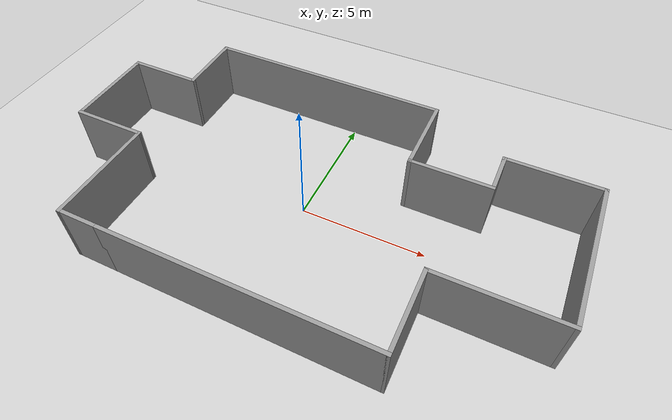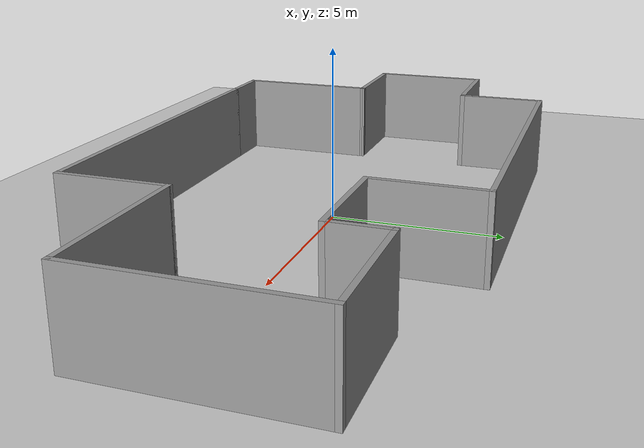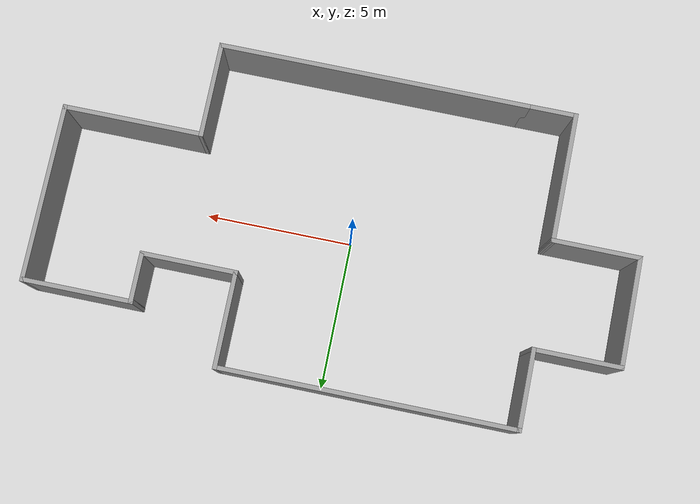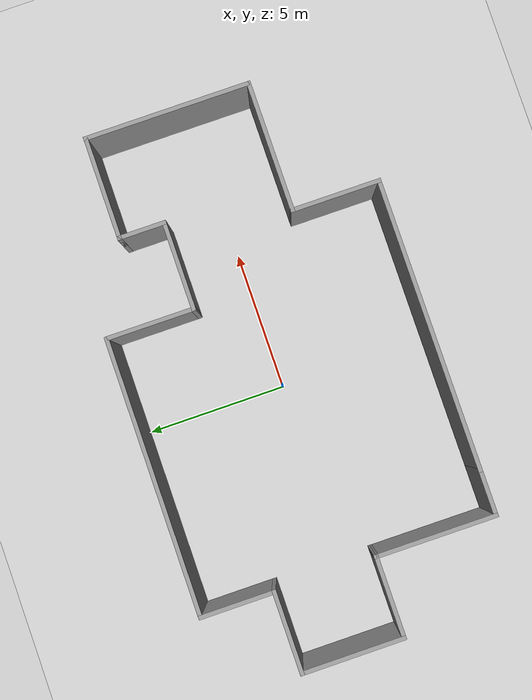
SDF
<sdf version="1.7">
 <world name="default">
  <light name="sun" type="directional">
   <pose>0 0 10 0 -0 0</pose>
   <diffuse>0.8 0.8 0.8 1</diffuse>
   <specular>0.2 0.2 0.2 1</specular>
   <attenuation>
    <range>1000</range>
    <constant>0.9</constant>
    <linear>0.01</linear>
    <quadratic>0.001</quadratic>
   </attenuation>
   <direction>-0.5 0.1 -0.9</direction>
   <spot><inner_angle>0</inner_angle><outer_angle>0</outer_angle><falloff>0</falloff></spot>
  </light>
  <model name="ground_plane">
   <static>1</static>
   <link name="link">
    <collision name="collision">
     <geometry><plane><normal>0 0 1</normal><size>100 100</size></plane></geometry>
     <surface>
      <contact><collide_bitmask>65535</collide_bitmask></contact>
      <friction><ode><mu>100</mu><mu2>50</mu2></ode></friction>
     </surface>
    </collision>
    <visual name="visual">
     <cast_shadows>0</cast_shadows>
     <geometry><plane><normal>0 0 1</normal><size>100 100</size></plane></geometry>
     <material>
      <script><uri>file://media/materials/scripts/gazebo.material</uri><name>Gazebo/Grey</name></script>
     </material>
    </visual>
   </link>
  </model>
  <gravity>0 0 -9.8</gravity>
  <magnetic_field>6e-06 2.3e-05 -4.2e-05</magnetic_field>
  <atmosphere type="adiabatic"/>
  <physics type="ode">
   <max_step_size>0.001</max_step_size>
   <real_time_factor>1</real_time_factor>
   <real_time_update_rate>1000</real_time_update_rate>
  </physics>
  <scene><ambient>0.4 0.4 0.4 1</ambient><background>0.7 0.7 0.7 1</background><shadows>1</shadows></scene>
  <spherical_coordinates>
   <surface_model>EARTH_WGS84</surface_model>
   <latitude_deg>0</latitude_deg>
   <longitude_deg>0</longitude_deg>
   <elevation>0</elevation>
   <heading_deg>0</heading_deg>
  </spherical_coordinates>
  <model name="husky">
   <pose>0.405961 -0.112891 0 0 -0 0</pose>
   <link name="Wall_14">
    <collision name="Wall_14_Collision">
     <geometry><box><size>10.5 0.15 2.5</size></box></geometry>
     <pose>0 0 1.25 0 -0 0</pose>
    </collision>
    <visual name="Wall_14_Visual">
     <pose>0 0 1.25 0 -0 0</pose>
     <geometry><box><size>10.5 0.15 2.5</size></box></geometry>
     <material>
      <script><uri>file://media/materials/scripts/gazebo.material</uri><name>Gazebo/Grey</name></script>
      <ambient>1 1 1 1</ambient>
     </material>
     <meta><layer>0</layer></meta>
    </visual>
    <pose>-0.08 -5.22491 0 0 -0 0</pose>
   </link>
   <link name="Wall_15">
    <collision name="Wall_15_Collision">
     <geometry><box><size>3.25 0.15 2.5</size></box></geometry>
     <pose>0 0 1.25 0 -0 0</pose>
    </collision>
    <visual name="Wall_15_Visual">
     <pose>0 0 1.25 0 -0 0</pose>
     <geometry><box><size>3.25 0.15 2.5</size></box></geometry>
     <material>
      <script><uri>file://media/materials/scripts/gazebo.material</uri><name>Gazebo/Grey</name></script>
      <ambient>1 1 1 1</ambient>
     </material>
     <meta><layer>0</layer></meta>
    </visual>
    <pose>5.095 -3.67491 0 0 -0 1.5708</pose>
   </link>
   <link name="Wall_16">
    <collision name="Wall_16_Collision">
     <geometry><box><size>4.75 0.15 2.5</size></box></geometry>
     <pose>0 0 1.25 0 -0 0</pose>
    </collision>
    <visual name="Wall_16_Visual">
     <pose>0 0 1.25 0 -0 0</pose>
     <geometry><box><size>4.75 0.15 2.5</size></box></geometry>
     <material>
      <script><uri>file://media/materials/scripts/gazebo.material</uri><name>Gazebo/Grey</name></script>
      <ambient>1 1 1 1</ambient>
     </material>
     <meta><layer>0</layer></meta>
    </visual>
    <pose>7.395 -2.12491 0 0 -0 0</pose>
   </link>
   <link name="Wall_17">
    <collision name="Wall_17_Collision">
     <geometry><box><size>6 0.15 2.5</size></box></geometry>
     <pose>0 0 1.25 0 -0 0</pose>
    </collision>
    <visual name="Wall_17_Visual">
     <pose>0 0 1.25 0 -0 0</pose>
     <geometry><box><size>6 0.15 2.5</size></box></geometry>
     <material>
      <script><uri>file://media/materials/scripts/gazebo.material</uri><name>Gazebo/Grey</name></script>
      <ambient>1 1 1 1</ambient>
     </material>
     <meta><layer>0</layer></meta>
    </visual>
    <pose>9.695 0.800088 0 0 -0 1.5708</pose>
   </link>
   <link name="Wall_18">
    <collision name="Wall_18_Collision">
     <geometry><box><size>3.75 0.15 2.5</size></box></geometry>
     <pose>0 0 1.25 0 -0 0</pose>
    </collision>
    <visual name="Wall_18_Visual">
     <pose>0 0 1.25 0 -0 0</pose>
     <geometry><box><size>3.75 0.15 2.5</size></box></geometry>
     <material>
      <script><uri>file://media/materials/scripts/gazebo.material</uri><name>Gazebo/Grey</name></script>
      <ambient>1 1 1 1</ambient>
     </material>
     <meta><layer>0</layer></meta>
    </visual>
    <pose>7.895 3.72509 0 0 -0 3.14159</pose>
   </link>
   <link name="Wall_19">
    <collision name="Wall_19_Collision">
     <geometry><box><size>0.16 0.15 2.5</size></box></geometry>
     <pose>0 0 1.25 0 -0 0</pose>
    </collision>
    <visual name="Wall_19_Visual">
     <pose>0 0 1.25 0 -0 0</pose>
     <geometry><box><size>0.16 0.15 2.5</size></box></geometry>
     <material>
      <script><uri>file://media/materials/scripts/gazebo.material</uri><name>Gazebo/Grey</name></script>
      <ambient>1 1 1 1</ambient>
     </material>
     <meta><layer>0</layer></meta>
    </visual>
    <pose>6.1 3.72509 0 0 -0 0</pose>
   </link>
   <link name="Wall_20">
    <collision name="Wall_20_Collision">
     <geometry><box><size>1.75 0.15 2.5</size></box></geometry>
     <pose>0 0 1.25 0 -0 0</pose>
    </collision>
    <visual name="Wall_20_Visual">
     <pose>0 0 1.25 0 -0 0</pose>
     <geometry><box><size>1.75 0.15 2.5</size></box></geometry>
     <material>
      <script><uri>file://media/materials/scripts/gazebo.material</uri><name>Gazebo/Grey</name></script>
      <ambient>1 1 1 1</ambient>
     </material>
     <meta><layer>0</layer></meta>
    </visual>
    <pose>6.105 2.92509 0 0 -0 -1.5708</pose>
   </link>
   <link name="Wall_21">
    <collision name="Wall_21_Collision">
     <geometry><box><size>3.25 0.15 2.5</size></box></geometry>
     <pose>0 0 1.25 0 -0 0</pose>
    </collision>
    <visual name="Wall_21_Visual">
     <pose>0 0 1.25 0 -0 0</pose>
     <geometry><box><size>3.25 0.15 2.5</size></box></geometry>
     <material>
      <script><uri>file://media/materials/scripts/gazebo.material</uri><name>Gazebo/Grey</name></script>
      <ambient>1 1 1 1</ambient>
     </material>
     <meta><layer>0</layer></meta>
    </visual>
    <pose>4.555 2.12509 0 0 -0 3.14159</pose>
   </link>
   <link name="Wall_22">
    <collision name="Wall_22_Collision">
     <geometry><box><size>3.25 0.15 2.5</size></box></geometry>
     <pose>0 0 1.25 0 -0 0</pose>
    </collision>
    <visual name="Wall_22_Visual">
     <pose>0 0 1.25 0 -0 0</pose>
     <geometry><box><size>3.25 0.15 2.5</size></box></geometry>
     <material>
      <script><uri>file://media/materials/scripts/gazebo.material</uri><name>Gazebo/Grey</name></script>
      <ambient>1 1 1 1</ambient>
     </material>
     <meta><layer>0</layer></meta>
    </visual>
    <pose>3.005 3.67509 0 0 -0 1.5708</pose>
   </link>
   <link name="Wall_23">
    <collision name="Wall_23_Collision">
     <geometry><box><size>10 0.15 2.5</size></box></geometry>
     <pose>0 0 1.25 0 -0 0</pose>
    </collision>
    <visual name="Wall_23_Visual">
     <pose>0 0 1.25 0 -0 0</pose>
     <geometry><box><size>10 0.15 2.5</size></box></geometry>
     <material>
      <script><uri>file://media/materials/scripts/gazebo.material</uri><name>Gazebo/Grey</name></script>
      <ambient>1 1 1 1</ambient>
     </material>
     <meta><layer>0</layer></meta>
    </visual>
    <pose>-1.92 5.22509 0 0 -0 3.14159</pose>
   </link>
   <link name="Wall_24">
    <collision name="Wall_24_Collision">
     <geometry><box><size>2.75 0.15 2.5</size></box></geometry>
     <pose>0 0 1.25 0 -0 0</pose>
    </collision>
    <visual name="Wall_24_Visual">
     <pose>0 0 1.25 0 -0 0</pose>
     <geometry><box><size>2.75 0.15 2.5</size></box></geometry>
     <material>
      <script><uri>file://media/materials/scripts/gazebo.material</uri><name>Gazebo/Grey</name></script>
      <ambient>1 1 1 1</ambient>
     </material>
     <meta><layer>0</layer></meta>
    </visual>
    <pose>-6.845 3.92509 0 0 -0 -1.5708</pose>
   </link>
   <link name="Wall_25">
    <collision name="Wall_25_Collision">
     <geometry><box><size>3 0.15 2.5</size></box></geometry>
     <pose>0 0 1.25 0 -0 0</pose>
    </collision>
    <visual name="Wall_25_Visual">
     <pose>0 0 1.25 0 -0 0</pose>
     <geometry><box><size>3 0.15 2.5</size></box></geometry>
     <material>
      <script><uri>file://media/materials/scripts/gazebo.material</uri><name>Gazebo/Grey</name></script>
      <ambient>1 1 1 1</ambient>
     </material>
     <meta><layer>0</layer></meta>
    </visual>
    <pose>-8.27 2.62509 0 0 -0 3.14159</pose>
   </link>
   <link name="Wall_26">
    <collision name="Wall_26_Collision">
     <geometry><box><size>3.75 0.15 2.5</size></box></geometry>
     <pose>0 0 1.25 0 -0 0</pose>
    </collision>
    <visual name="Wall_26_Visual">
     <pose>0 0 1.25 0 -0 0</pose>
     <geometry><box><size>3.75 0.15 2.5</size></box></geometry>
     <material>
      <script><uri>file://media/materials/scripts/gazebo.material</uri><name>Gazebo/Grey</name></script>
      <ambient>1 1 1 1</ambient>
     </material>
     <meta><layer>0</layer></meta>
    </visual>
    <pose>-9.695 0.825088 0 0 -0 -1.5708</pose>
   </link>
   <link name="Wall_27">
    <collision name="Wall_27_Collision">
     <geometry><box><size>3 0.15 2.5</size></box></geometry>
     <pose>0 0 1.25 0 -0 0</pose>
    </collision>
    <visual name="Wall_27_Visual">
     <pose>0 0 1.25 0 -0 0</pose>
     <geometry><box><size>3 0.15 2.5</size></box></geometry>
     <material>
      <script><uri>file://media/materials/scripts/gazebo.material</uri><name>Gazebo/Grey</name></script>
      <ambient>1 1 1 1</ambient>
     </material>
     <meta><layer>0</layer></meta>
    </visual>
    <pose>-8.27 -0.974912 0 0 -0 0</pose>
   </link>
   <link name="Wall_28">
    <collision name="Wall_28_Collision">
     <geometry><box><size>4.40001 0.15 2.5</size></box></geometry>
     <pose>0 0 1.25 0 -0 0</pose>
    </collision>
    <visual name="Wall_28_Visual">
     <pose>0 0 1.25 0 -0 0</pose>
     <geometry><box><size>4.40001 0.15 2.5</size></box></geometry>
     <material>
      <script><uri>file://media/materials/scripts/gazebo.material</uri><name>Gazebo/Grey</name></script>
      <ambient>1 1 1 1</ambient>
     </material>
     <meta><layer>0</layer></meta>
    </visual>
    <pose>-6.85 -3.09991 0 0 -0 -1.57315</pose>
   </link>
   <link name="Wall_29">
    <collision name="Wall_29_Collision">
     <geometry><box><size>1.75 0.15 2.5</size></box></geometry>
     <pose>0 0 1.25 0 -0 0</pose>
    </collision>
    <visual name="Wall_29_Visual">
     <pose>0 0 1.25 0 -0 0</pose>
     <geometry><box><size>1.75 0.15 2.5</size></box></geometry>
     <material>
      <script><uri>file://media/materials/scripts/gazebo.material</uri><name>Gazebo/Grey</name></script>
      <ambient>1 1 1 1</ambient>
     </material>
     <meta><layer>0</layer></meta>
    </visual>
    <pose>-6.055 -5.22491 0 0 -0 0</pose>
   </link>
   <static>1</static>
  </model>
 </world>
</sdf>
